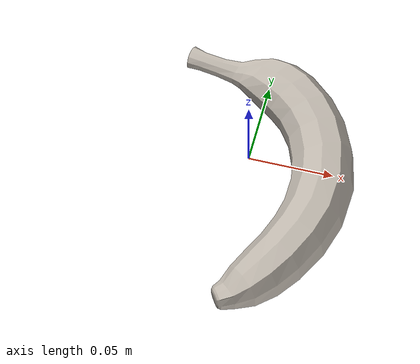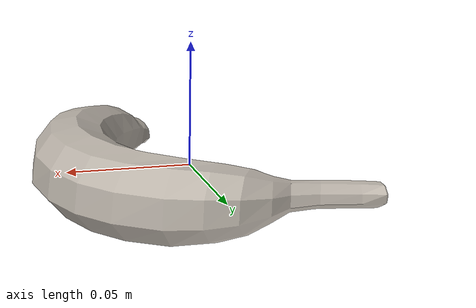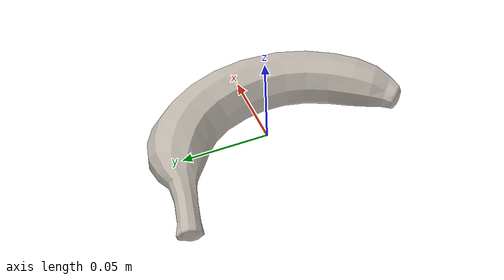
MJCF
<mujoco model="banana_1">
  <asset>
    <mesh file="visual/model_normalized_0.obj" name="banana_1_model_normalized_0_vis" scale="0.16499999999999998 0.16499999999999998 0.16499999999999998" refquat="-2.0514246579479128e-16 0.38268343236508984 0.9238795325112867 8.497279155086131e-17" />
    <mesh file="collision/model_normalized_collision_22.obj" name="banana_1_model_normalized_collision_22._coll" scale="0.16499999999999998 0.16499999999999998 0.16499999999999998" refquat="-2.0514246579479128e-16 0.38268343236508984 0.9238795325112867 8.497279155086131e-17" />
    <mesh file="collision/model_normalized_collision_23.obj" name="banana_1_model_normalized_collision_23._coll" scale="0.16499999999999998 0.16499999999999998 0.16499999999999998" refquat="-2.0514246579479128e-16 0.38268343236508984 0.9238795325112867 8.497279155086131e-17" />
    <mesh file="collision/model_normalized_collision_21.obj" name="banana_1_model_normalized_collision_21._coll" scale="0.16499999999999998 0.16499999999999998 0.16499999999999998" refquat="-2.0514246579479128e-16 0.38268343236508984 0.9238795325112867 8.497279155086131e-17" />
    <mesh file="collision/model_normalized_collision_20.obj" name="banana_1_model_normalized_collision_20._coll" scale="0.16499999999999998 0.16499999999999998 0.16499999999999998" refquat="-2.0514246579479128e-16 0.38268343236508984 0.9238795325112867 8.497279155086131e-17" />
    <mesh file="collision/model_normalized_collision_24.obj" name="banana_1_model_normalized_collision_24._coll" scale="0.16499999999999998 0.16499999999999998 0.16499999999999998" refquat="-2.0514246579479128e-16 0.38268343236508984 0.9238795325112867 8.497279155086131e-17" />
    <mesh file="collision/model_normalized_collision_30.obj" name="banana_1_model_normalized_collision_30._coll" scale="0.16499999999999998 0.16499999999999998 0.16499999999999998" refquat="-2.0514246579479128e-16 0.38268343236508984 0.9238795325112867 8.497279155086131e-17" />
    <mesh file="collision/model_normalized_collision_18.obj" name="banana_1_model_normalized_collision_18._coll" scale="0.16499999999999998 0.16499999999999998 0.16499999999999998" refquat="-2.0514246579479128e-16 0.38268343236508984 0.9238795325112867 8.497279155086131e-17" />
    <mesh file="collision/model_normalized_collision_19.obj" name="banana_1_model_normalized_collision_19._coll" scale="0.16499999999999998 0.16499999999999998 0.16499999999999998" refquat="-2.0514246579479128e-16 0.38268343236508984 0.9238795325112867 8.497279155086131e-17" />
    <mesh file="collision/model_normalized_collision_31.obj" name="banana_1_model_normalized_collision_31._coll" scale="0.16499999999999998 0.16499999999999998 0.16499999999999998" refquat="-2.0514246579479128e-16 0.38268343236508984 0.9238795325112867 8.497279155086131e-17" />
    <mesh file="collision/model_normalized_collision_25.obj" name="banana_1_model_normalized_collision_25._coll" scale="0.16499999999999998 0.16499999999999998 0.16499999999999998" refquat="-2.0514246579479128e-16 0.38268343236508984 0.9238795325112867 8.497279155086131e-17" />
    <mesh file="collision/model_normalized_collision_27.obj" name="banana_1_model_normalized_collision_27._coll" scale="0.16499999999999998 0.16499999999999998 0.16499999999999998" refquat="-2.0514246579479128e-16 0.38268343236508984 0.9238795325112867 8.497279155086131e-17" />
    <mesh file="collision/model_normalized_collision_26.obj" name="banana_1_model_normalized_collision_26._coll" scale="0.16499999999999998 0.16499999999999998 0.16499999999999998" refquat="-2.0514246579479128e-16 0.38268343236508984 0.9238795325112867 8.497279155086131e-17" />
    <mesh file="collision/model_normalized_collision_9.obj" name="banana_1_model_normalized_collision_9._coll" scale="0.16499999999999998 0.16499999999999998 0.16499999999999998" refquat="-2.0514246579479128e-16 0.38268343236508984 0.9238795325112867 8.497279155086131e-17" />
    <mesh file="collision/model_normalized_collision_8.obj" name="banana_1_model_normalized_collision_8._coll" scale="0.16499999999999998 0.16499999999999998 0.16499999999999998" refquat="-2.0514246579479128e-16 0.38268343236508984 0.9238795325112867 8.497279155086131e-17" />
    <mesh file="collision/model_normalized_collision_6.obj" name="banana_1_model_normalized_collision_6._coll" scale="0.16499999999999998 0.16499999999999998 0.16499999999999998" refquat="-2.0514246579479128e-16 0.38268343236508984 0.9238795325112867 8.497279155086131e-17" />
    <mesh file="collision/model_normalized_collision_7.obj" name="banana_1_model_normalized_collision_7._coll" scale="0.16499999999999998 0.16499999999999998 0.16499999999999998" refquat="-2.0514246579479128e-16 0.38268343236508984 0.9238795325112867 8.497279155086131e-17" />
    <mesh file="collision/model_normalized_collision_5.obj" name="banana_1_model_normalized_collision_5._coll" scale="0.16499999999999998 0.16499999999999998 0.16499999999999998" refquat="-2.0514246579479128e-16 0.38268343236508984 0.9238795325112867 8.497279155086131e-17" />
    <mesh file="collision/model_normalized_collision_4.obj" name="banana_1_model_normalized_collision_4._coll" scale="0.16499999999999998 0.16499999999999998 0.16499999999999998" refquat="-2.0514246579479128e-16 0.38268343236508984 0.9238795325112867 8.497279155086131e-17" />
    <mesh file="collision/model_normalized_collision_0.obj" name="banana_1_model_normalized_collision_0._coll" scale="0.16499999999999998 0.16499999999999998 0.16499999999999998" refquat="-2.0514246579479128e-16 0.38268343236508984 0.9238795325112867 8.497279155086131e-17" />
    <mesh file="collision/model_normalized_collision_1.obj" name="banana_1_model_normalized_collision_1._coll" scale="0.16499999999999998 0.16499999999999998 0.16499999999999998" refquat="-2.0514246579479128e-16 0.38268343236508984 0.9238795325112867 8.497279155086131e-17" />
    <mesh file="collision/model_normalized_collision_3.obj" name="banana_1_model_normalized_collision_3._coll" scale="0.16499999999999998 0.16499999999999998 0.16499999999999998" refquat="-2.0514246579479128e-16 0.38268343236508984 0.9238795325112867 8.497279155086131e-17" />
    <mesh file="collision/model_normalized_collision_2.obj" name="banana_1_model_normalized_collision_2._coll" scale="0.16499999999999998 0.16499999999999998 0.16499999999999998" refquat="-2.0514246579479128e-16 0.38268343236508984 0.9238795325112867 8.497279155086131e-17" />
    <mesh file="collision/model_normalized_collision_17.obj" name="banana_1_model_normalized_collision_17._coll" scale="0.16499999999999998 0.16499999999999998 0.16499999999999998" refquat="-2.0514246579479128e-16 0.38268343236508984 0.9238795325112867 8.497279155086131e-17" />
    <mesh file="collision/model_normalized_collision_16.obj" name="banana_1_model_normalized_collision_16._coll" scale="0.16499999999999998 0.16499999999999998 0.16499999999999998" refquat="-2.0514246579479128e-16 0.38268343236508984 0.9238795325112867 8.497279155086131e-17" />
    <mesh file="collision/model_normalized_collision_28.obj" name="banana_1_model_normalized_collision_28._coll" scale="0.16499999999999998 0.16499999999999998 0.16499999999999998" refquat="-2.0514246579479128e-16 0.38268343236508984 0.9238795325112867 8.497279155086131e-17" />
    <mesh file="collision/model_normalized_collision_14.obj" name="banana_1_model_normalized_collision_14._coll" scale="0.16499999999999998 0.16499999999999998 0.16499999999999998" refquat="-2.0514246579479128e-16 0.38268343236508984 0.9238795325112867 8.497279155086131e-17" />
    <mesh file="collision/model_normalized_collision_15.obj" name="banana_1_model_normalized_collision_15._coll" scale="0.16499999999999998 0.16499999999999998 0.16499999999999998" refquat="-2.0514246579479128e-16 0.38268343236508984 0.9238795325112867 8.497279155086131e-17" />
    <mesh file="collision/model_normalized_collision_29.obj" name="banana_1_model_normalized_collision_29._coll" scale="0.16499999999999998 0.16499999999999998 0.16499999999999998" refquat="-2.0514246579479128e-16 0.38268343236508984 0.9238795325112867 8.497279155086131e-17" />
    <mesh file="collision/model_normalized_collision_11.obj" name="banana_1_model_normalized_collision_11._coll" scale="0.16499999999999998 0.16499999999999998 0.16499999999999998" refquat="-2.0514246579479128e-16 0.38268343236508984 0.9238795325112867 8.497279155086131e-17" />
    <mesh file="collision/model_normalized_collision_10.obj" name="banana_1_model_normalized_collision_10._coll" scale="0.16499999999999998 0.16499999999999998 0.16499999999999998" refquat="-2.0514246579479128e-16 0.38268343236508984 0.9238795325112867 8.497279155086131e-17" />
    <mesh file="collision/model_normalized_collision_12.obj" name="banana_1_model_normalized_collision_12._coll" scale="0.16499999999999998 0.16499999999999998 0.16499999999999998" refquat="-2.0514246579479128e-16 0.38268343236508984 0.9238795325112867 8.497279155086131e-17" />
    <mesh file="collision/model_normalized_collision_13.obj" name="banana_1_model_normalized_collision_13._coll" scale="0.16499999999999998 0.16499999999999998 0.16499999999999998" refquat="-2.0514246579479128e-16 0.38268343236508984 0.9238795325112867 8.497279155086131e-17" />
    <texture type="2d" name="banana_1_image0" file="visual/image0.png" />
    <material name="banana_1_M_Banan" texture="banana_1_image0" specular="0.5" shininess="0.25" />
  </asset>
  <worldbody>
    <body>
      <joint name="banana_1_object_joint" type="free" damping="1." /><body name="banana_1_object">
        <geom solimp="0.998 0.998 0.001" solref="0.001 1" density="300" friction="0.95 0.3 0.1" type="mesh" mesh="banana_1_model_normalized_0_vis" conaffinity="0" contype="0" group="1" material="banana_1_M_Banan" />
        <geom solimp="0.998 0.998 0.001" solref="0.001 1" density="300" friction="0.95 0.3 0.1" type="mesh" mesh="banana_1_model_normalized_collision_22._coll" group="0" rgba="0.8 0.8 0.8 0.0" />
        <geom solimp="0.998 0.998 0.001" solref="0.001 1" density="300" friction="0.95 0.3 0.1" type="mesh" mesh="banana_1_model_normalized_collision_23._coll" group="0" rgba="0.8 0.8 0.8 0.0" />
        <geom solimp="0.998 0.998 0.001" solref="0.001 1" density="300" friction="0.95 0.3 0.1" type="mesh" mesh="banana_1_model_normalized_collision_21._coll" group="0" rgba="0.8 0.8 0.8 0.0" />
        <geom solimp="0.998 0.998 0.001" solref="0.001 1" density="300" friction="0.95 0.3 0.1" type="mesh" mesh="banana_1_model_normalized_collision_20._coll" group="0" rgba="0.8 0.8 0.8 0.0" />
        <geom solimp="0.998 0.998 0.001" solref="0.001 1" density="300" friction="0.95 0.3 0.1" type="mesh" mesh="banana_1_model_normalized_collision_24._coll" group="0" rgba="0.8 0.8 0.8 0.0" />
        <geom solimp="0.998 0.998 0.001" solref="0.001 1" density="300" friction="0.95 0.3 0.1" type="mesh" mesh="banana_1_model_normalized_collision_30._coll" group="0" rgba="0.8 0.8 0.8 0.0" />
        <geom solimp="0.998 0.998 0.001" solref="0.001 1" density="300" friction="0.95 0.3 0.1" type="mesh" mesh="banana_1_model_normalized_collision_18._coll" group="0" rgba="0.8 0.8 0.8 0.0" />
        <geom solimp="0.998 0.998 0.001" solref="0.001 1" density="300" friction="0.95 0.3 0.1" type="mesh" mesh="banana_1_model_normalized_collision_19._coll" group="0" rgba="0.8 0.8 0.8 0.0" />
        <geom solimp="0.998 0.998 0.001" solref="0.001 1" density="300" friction="0.95 0.3 0.1" type="mesh" mesh="banana_1_model_normalized_collision_31._coll" group="0" rgba="0.8 0.8 0.8 0.0" />
        <geom solimp="0.998 0.998 0.001" solref="0.001 1" density="300" friction="0.95 0.3 0.1" type="mesh" mesh="banana_1_model_normalized_collision_25._coll" group="0" rgba="0.8 0.8 0.8 0.0" />
        <geom solimp="0.998 0.998 0.001" solref="0.001 1" density="300" friction="0.95 0.3 0.1" type="mesh" mesh="banana_1_model_normalized_collision_27._coll" group="0" rgba="0.8 0.8 0.8 0.0" />
        <geom solimp="0.998 0.998 0.001" solref="0.001 1" density="300" friction="0.95 0.3 0.1" type="mesh" mesh="banana_1_model_normalized_collision_26._coll" group="0" rgba="0.8 0.8 0.8 0.0" />
        <geom solimp="0.998 0.998 0.001" solref="0.001 1" density="300" friction="0.95 0.3 0.1" type="mesh" mesh="banana_1_model_normalized_collision_9._coll" group="0" rgba="0.8 0.8 0.8 0.0" />
        <geom solimp="0.998 0.998 0.001" solref="0.001 1" density="300" friction="0.95 0.3 0.1" type="mesh" mesh="banana_1_model_normalized_collision_8._coll" group="0" rgba="0.8 0.8 0.8 0.0" />
        <geom solimp="0.998 0.998 0.001" solref="0.001 1" density="300" friction="0.95 0.3 0.1" type="mesh" mesh="banana_1_model_normalized_collision_6._coll" group="0" rgba="0.8 0.8 0.8 0.0" />
        <geom solimp="0.998 0.998 0.001" solref="0.001 1" density="300" friction="0.95 0.3 0.1" type="mesh" mesh="banana_1_model_normalized_collision_7._coll" group="0" rgba="0.8 0.8 0.8 0.0" />
        <geom solimp="0.998 0.998 0.001" solref="0.001 1" density="300" friction="0.95 0.3 0.1" type="mesh" mesh="banana_1_model_normalized_collision_5._coll" group="0" rgba="0.8 0.8 0.8 0.0" />
        <geom solimp="0.998 0.998 0.001" solref="0.001 1" density="300" friction="0.95 0.3 0.1" type="mesh" mesh="banana_1_model_normalized_collision_4._coll" group="0" rgba="0.8 0.8 0.8 0.0" />
        <geom solimp="0.998 0.998 0.001" solref="0.001 1" density="300" friction="0.95 0.3 0.1" type="mesh" mesh="banana_1_model_normalized_collision_0._coll" group="0" rgba="0.8 0.8 0.8 0.0" />
        <geom solimp="0.998 0.998 0.001" solref="0.001 1" density="300" friction="0.95 0.3 0.1" type="mesh" mesh="banana_1_model_normalized_collision_1._coll" group="0" rgba="0.8 0.8 0.8 0.0" />
        <geom solimp="0.998 0.998 0.001" solref="0.001 1" density="300" friction="0.95 0.3 0.1" type="mesh" mesh="banana_1_model_normalized_collision_3._coll" group="0" rgba="0.8 0.8 0.8 0.0" />
        <geom solimp="0.998 0.998 0.001" solref="0.001 1" density="300" friction="0.95 0.3 0.1" type="mesh" mesh="banana_1_model_normalized_collision_2._coll" group="0" rgba="0.8 0.8 0.8 0.0" />
        <geom solimp="0.998 0.998 0.001" solref="0.001 1" density="300" friction="0.95 0.3 0.1" type="mesh" mesh="banana_1_model_normalized_collision_17._coll" group="0" rgba="0.8 0.8 0.8 0.0" />
        <geom solimp="0.998 0.998 0.001" solref="0.001 1" density="300" friction="0.95 0.3 0.1" type="mesh" mesh="banana_1_model_normalized_collision_16._coll" group="0" rgba="0.8 0.8 0.8 0.0" />
        <geom solimp="0.998 0.998 0.001" solref="0.001 1" density="300" friction="0.95 0.3 0.1" type="mesh" mesh="banana_1_model_normalized_collision_28._coll" group="0" rgba="0.8 0.8 0.8 0.0" />
        <geom solimp="0.998 0.998 0.001" solref="0.001 1" density="300" friction="0.95 0.3 0.1" type="mesh" mesh="banana_1_model_normalized_collision_14._coll" group="0" rgba="0.8 0.8 0.8 0.0" />
        <geom solimp="0.998 0.998 0.001" solref="0.001 1" density="300" friction="0.95 0.3 0.1" type="mesh" mesh="banana_1_model_normalized_collision_15._coll" group="0" rgba="0.8 0.8 0.8 0.0" />
        <geom solimp="0.998 0.998 0.001" solref="0.001 1" density="300" friction="0.95 0.3 0.1" type="mesh" mesh="banana_1_model_normalized_collision_29._coll" group="0" rgba="0.8 0.8 0.8 0.0" />
        <geom solimp="0.998 0.998 0.001" solref="0.001 1" density="300" friction="0.95 0.3 0.1" type="mesh" mesh="banana_1_model_normalized_collision_11._coll" group="0" rgba="0.8 0.8 0.8 0.0" />
        <geom solimp="0.998 0.998 0.001" solref="0.001 1" density="300" friction="0.95 0.3 0.1" type="mesh" mesh="banana_1_model_normalized_collision_10._coll" group="0" rgba="0.8 0.8 0.8 0.0" />
        <geom solimp="0.998 0.998 0.001" solref="0.001 1" density="300" friction="0.95 0.3 0.1" type="mesh" mesh="banana_1_model_normalized_collision_12._coll" group="0" rgba="0.8 0.8 0.8 0.0" />
        <geom solimp="0.998 0.998 0.001" solref="0.001 1" density="300" friction="0.95 0.3 0.1" type="mesh" mesh="banana_1_model_normalized_collision_13._coll" group="0" rgba="0.8 0.8 0.8 0.0" />
      </body>

    </body>
  </worldbody>
</mujoco>
